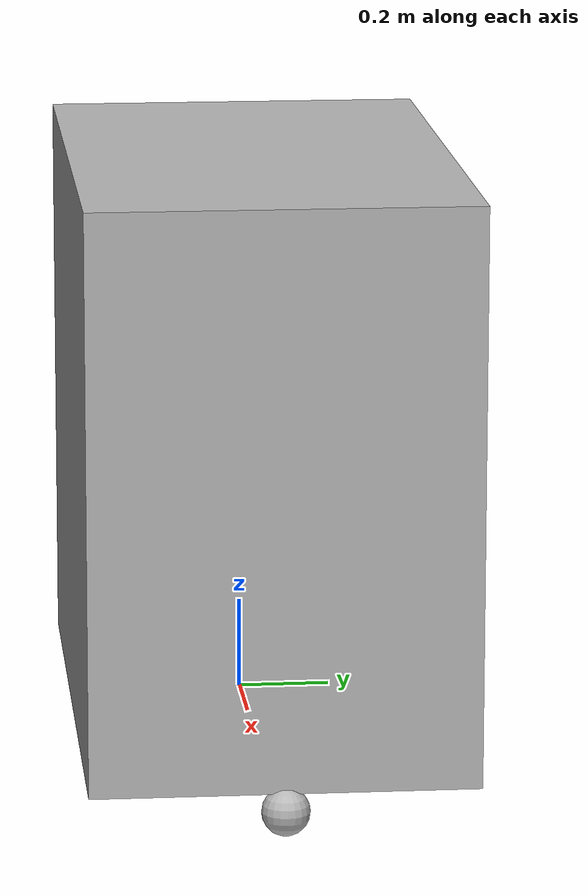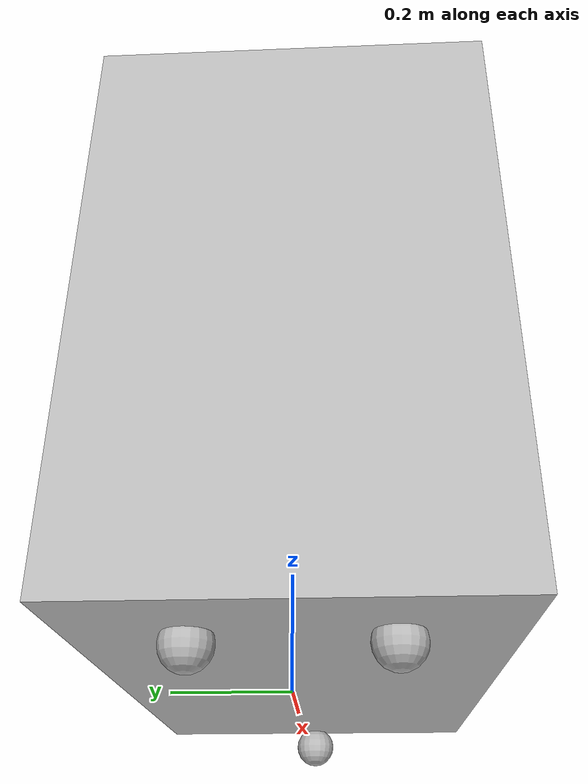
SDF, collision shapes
<?xml version="1.0"?>

<sdf version="1.6">
  <model name='DeliveryRobot'>

    <!-- TODO(MXG): Find actual physical properties for DeliveryRobot -->

    <plugin name="slotcar" filename="libslotcar.so">

      <!-- Forward / Backward -->
      <nominal_drive_speed>2.5</nominal_drive_speed>
      <nominal_drive_acceleration>0.5</nominal_drive_acceleration>
      <max_drive_acceleration>0.5</max_drive_acceleration>

      <!-- Turning -->
      <nominal_turn_speed>0.5</nominal_turn_speed>
      <nominal_turn_acceleration>0.5</nominal_turn_acceleration>
      <max_turn_acceleration>0.5</max_turn_acceleration>

      <!-- Stop distance and radius  -->
      <stop_distance>1.5</stop_distance>
      <stop_radius>1.5</stop_radius>

      <!-- Can the robot drive backwards -->
      <reversible>false</reversible>

      <!-- Battery params -->
      <nominal_voltage>24.0</nominal_voltage>
      <nominal_capacity>20.0</nominal_capacity>
      <charging_current>10.0</charging_current>

      <!-- Physical params -->
      <mass>70.0</mass>
      <inertia>40.0</inertia>
      <friction_coefficient>0.22</friction_coefficient>

      <!-- Power systems -->
      <nominal_power>100.0</nominal_power>

    </plugin>
    <!-- Main CleanerBotA Body -->

    <link name="body">
      <pose>0 0 0 0 0 0</pose>

      <inertial>
        <pose>0.36 0 0.43294142 0 0 0</pose>
        <mass>15.0</mass> <!-- Mass reduced to prevent model rolling when stationary -->
        <inertia>
          <ixx>3.016</ixx>
          <iyy>2.332</iyy>
          <izz>2.425</izz>
        </inertia>
      </inertial>

      <visual name="visual">
        <pose frame=''>0.0 0 0.05 0 0 0</pose>
        <geometry>
          <mesh><uri>model://DeliveryRobot/meshes/ImageToStl.com_chassis.obj</uri>  <scale>0.001 0.001 0.001</scale> </mesh>

        </geometry>
      </visual>
      <collision name="body_collision">
        <pose frame=''>0.46 0 0.7 0 0 0</pose>
        <geometry>
          <box>
            <size>1.3 0.8 1.2</size>
          </box>
        </geometry>
      </collision>

      <visual name="WheelFront">
        <pose>1.1 0.0 0.07 0 0 0</pose>
        <geometry>
          <mesh>
            <uri>model://DeliveryRobot/meshes/CleanerBotA_WheelFront.obj</uri> <scale>0.7 0.7 0.7</scale>
          </mesh>
        </geometry>
      </visual>
      <collision name='front_wheel_collision'>
        <pose>1.1 0.0 0.06 0 0 0</pose>
        <geometry>
          <sphere>
            <radius>0.05</radius>
          </sphere>
        </geometry>
        <surface>
          <contact>
            <ode>
              <kp>1e+08</kp>
              <min_depth>0.005</min_depth>
            </ode>
          </contact>
          <friction>
            <ode>
              <mu>0</mu>
              <mu2>0</mu2>
            </ode>
          </friction>
        </surface>
      </collision>

    </link>

    <!-- Left wheel link and revolute joint -->

    <link name="tire_left">
      <pose>0 0.18 0.08 0 0 0</pose>

      <inertial>
        <pose>0 0 0 0 0 0</pose>
        <mass>5.0</mass>
        <inertia>
          <ixx>0.02</ixx>
          <iyy>0.02</iyy>
          <izz>0.02</izz>
        </inertia>
      </inertial>

      <visual name="tire_left">
        <geometry>
          <mesh>
            <uri>model://DeliveryRobot/meshes/CleanerBotA_WheelBack.obj</uri> <scale>0.7 0.7 0.7</scale>
          </mesh>
        </geometry>
      </visual>

      <collision name='tire_left_collision'>
        <geometry>
          <sphere>
            <radius>0.05</radius>
          </sphere>
        </geometry>
        <surface>
          <contact>
            <ode>
              <kp>10000000.0</kp>
              <kd>1.0</kd>
            </ode>
          </contact>
        </surface>
      </collision>
    </link>

    <joint name="joint_tire_left" type="revolute">
      <parent>body</parent>
      <child>tire_left</child>
      <axis>
        <xyz>0 1 0</xyz>
      </axis>
    </joint>

    <!-- Right wheel link and revolute joint -->

    <link name="tire_right">
      <pose>0 -0.18 0.08 0 0 0</pose>
      <inertial>
        <pose>0 0 0 0 0 0</pose>
        <mass>5.0</mass>
        <inertia>
          <ixx>0.02</ixx>
          <iyy>0.02</iyy>
          <izz>0.02</izz>
        </inertia>
      </inertial>

      <visual name="tire_right">
        <geometry>
          <mesh>
            <uri>model://DeliveryRobot/meshes/CleanerBotA_WheelBack.obj</uri> <scale>0.7 0.7 0.7</scale>
          </mesh>
        </geometry>
      </visual>

      <collision name='tire_right_collision'>
        <geometry>
          <sphere>
            <radius>0.05</radius>
          </sphere>
        </geometry>
        <surface>
          <contact>
            <ode>
              <kp>10000000.0</kp>
              <kd>1.0</kd>
            </ode>
          </contact>
        </surface>
      </collision>
    </link>

    <joint name="joint_tire_right" type="revolute">
      <parent>body</parent>
      <child>tire_right</child>
      <axis>
        <xyz>0 1 0</xyz>
      </axis>
    </joint>
  </model>
</sdf>
